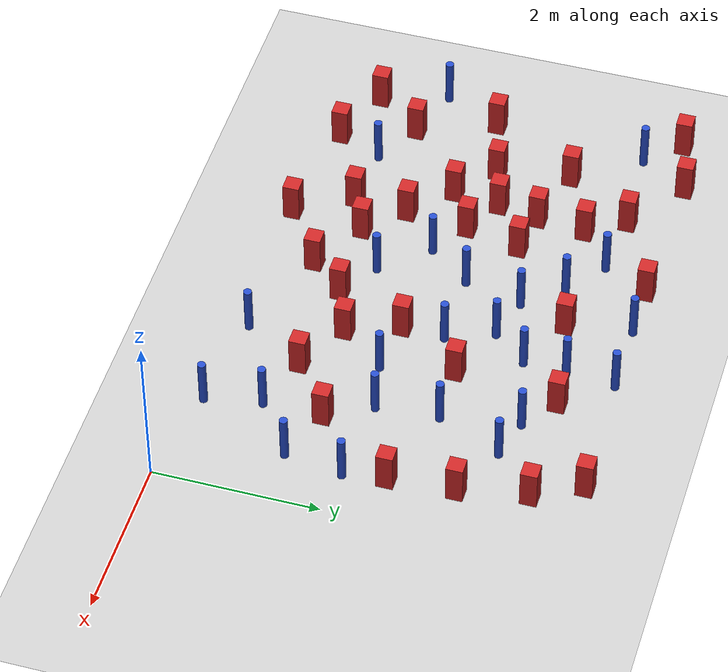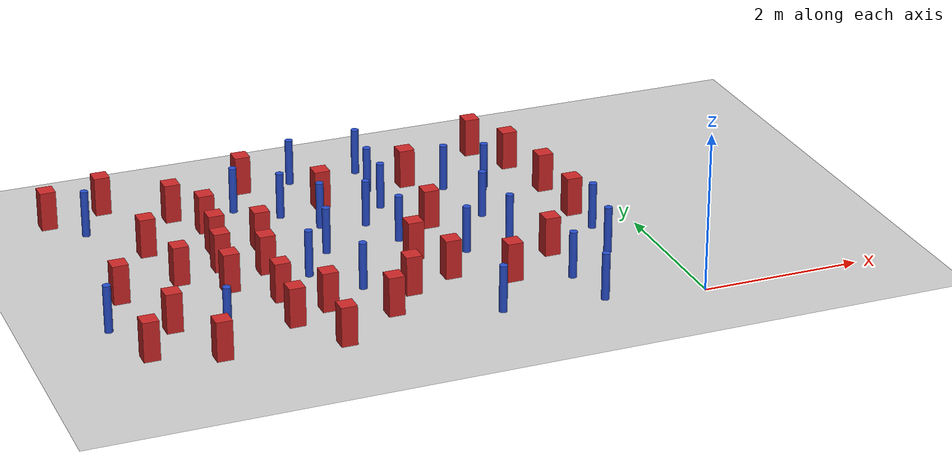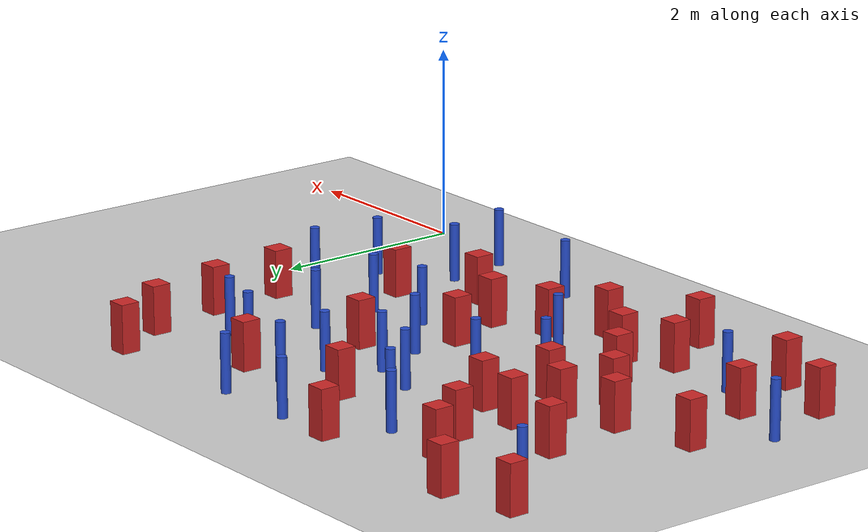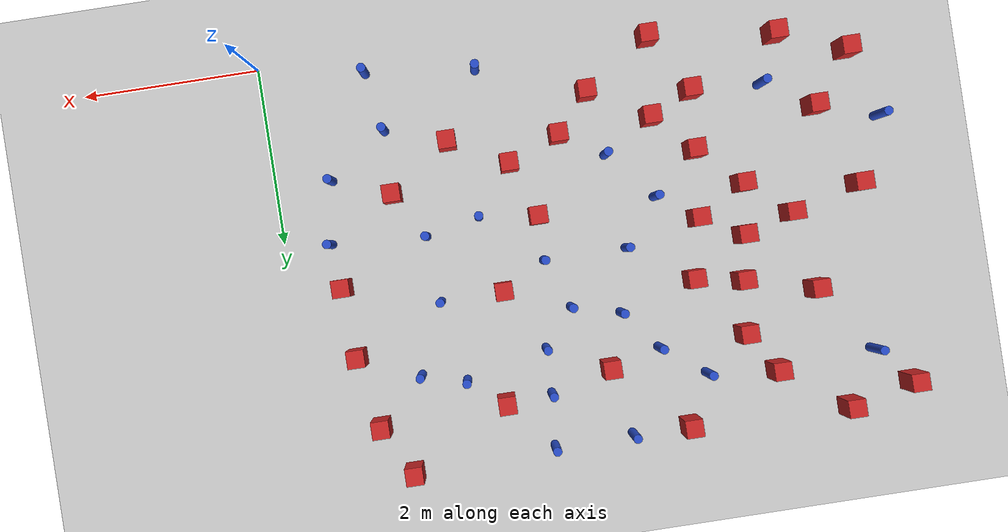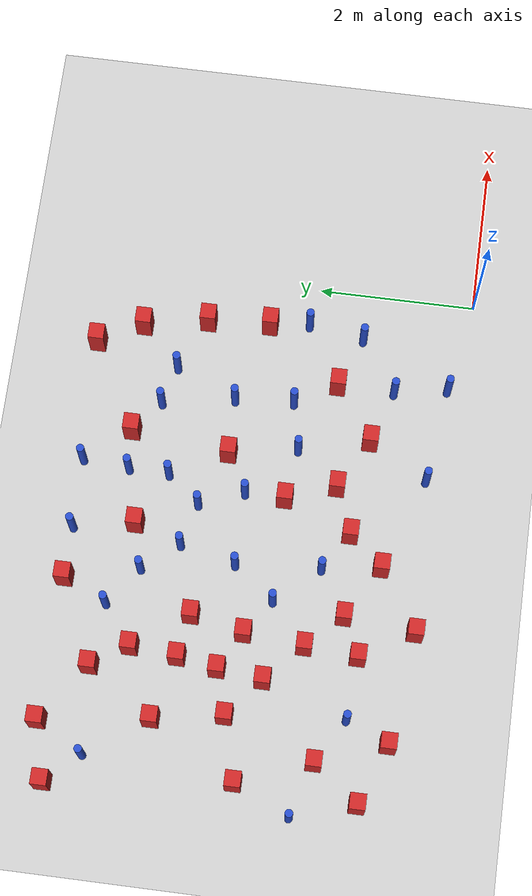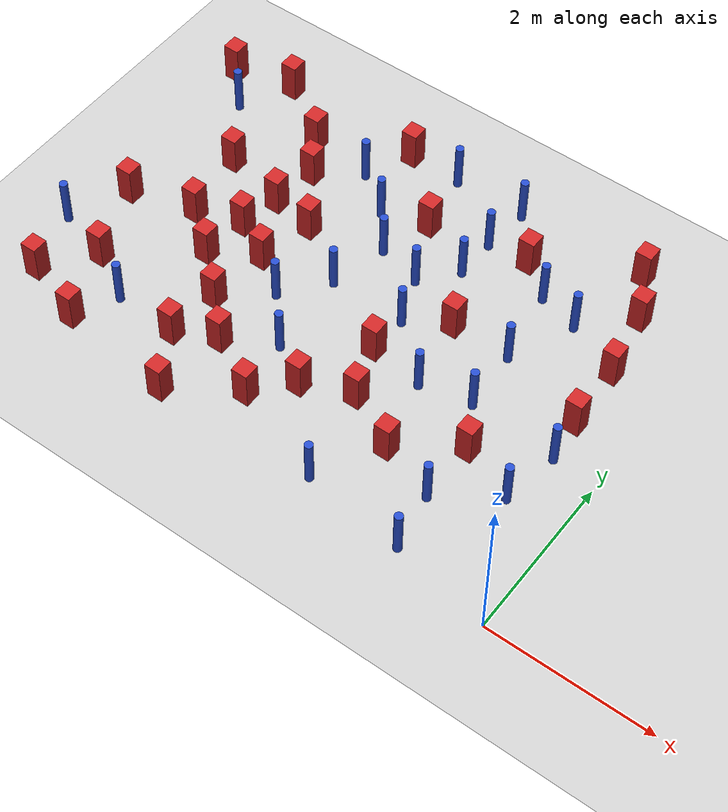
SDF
<sdf version="1.6">
 <world name="default">
  <model name="ground_plane">
   <static>1</static>
   <link name="link">
    <collision name="collision">
     <geometry><plane><normal>0 0 1</normal><size>100 100</size></plane></geometry>
     <surface><friction><ode><mu>100</mu><mu2>50</mu2></ode></friction></surface>
    </collision>
    <visual name="visual">
     <cast_shadows>0</cast_shadows>
     <geometry><plane><normal>0 0 1</normal><size>100 100</size></plane></geometry>
     <material>
      <ambient>1.0 1.0 1.0 1.0</ambient>
      <diffuse>0.8 0.8 0.8 1.0</diffuse>
      <specular>0.01 0.01 0.01 1.000000</specular>
     </material>
    </visual>
   </link>
  </model>
  <model name="square_post_obstacle3">
   <static>true</static>
   <pose>-5.07820106895 3.18135762716 -6.11067671241e-07 -5.50515727128e-06 -8.79689657224e-07 2.37013304536e-05</pose>
   <link name="link">
    <pose>0 0 0.25 0 -0 0</pose>
    <inertial>
     <mass>100</mass>
     <inertia>
      <ixx>0.166667</ixx>
      <ixy>0</ixy>
      <ixz>0</ixz>
      <iyy>0.166667</iyy>
      <iyz>0</iyz>
      <izz>0.166667</izz>
     </inertia>
    </inertial>
    <collision name="collision"><geometry><box><size>.2 .2 .5</size></box></geometry></collision>
    <visual name="visual">
     <geometry><box><size>.2 .2 .5</size></box></geometry>
     <material>
      <script><name>Gazebo/Red</name><uri>file://media/materials/scripts/gazebo.material</uri></script>
     </material>
    </visual>
   </link>
  </model>
  <model name="pole_obstacle3">
   <static>true</static>
   <pose>-5.60462151577 1.01709262523 -9.47619616065e-06 5.49618799737e-07 2.36310414071e-07 -1.55090534795e-07</pose>
   <link name="link">
    <pose>0 0 0.3 0 -0 0</pose>
    <inertial>
     <mass>1</mass>
     <inertia><ixx>0.145833</ixx><ixy>0</ixy><ixz>0</ixz><iyy>0.145833</iyy><iyz>0</iyz><izz>0.125</izz></inertia>
    </inertial>
    <collision name="collision">
     <geometry><cylinder><radius>0.05</radius><length>.6</length></cylinder></geometry>
    </collision>
    <visual name="visual">
     <geometry><cylinder><radius>0.05</radius><length>.6</length></cylinder></geometry>
     <material>
      <script><name>Gazebo/Blue</name><uri>file://media/materials/scripts/gazebo.material</uri></script>
     </material>
    </visual>
   </link>
  </model>
  <model name="square_post_obstacle6">
   <static>true</static>
   <pose>-2.23909041218 4.15770622929 -6.11067671241e-07 -5.50515727128e-06 -8.79689657224e-07 2.37013304536e-05</pose>
   <link name="link">
    <pose>0 0 0.25 0 -0 0</pose>
    <inertial>
     <mass>100</mass>
     <inertia>
      <ixx>0.166667</ixx>
      <ixy>0</ixy>
      <ixz>0</ixz>
      <iyy>0.166667</iyy>
      <iyz>0</iyz>
      <izz>0.166667</izz>
     </inertia>
    </inertial>
    <collision name="collision"><geometry><box><size>.2 .2 .5</size></box></geometry></collision>
    <visual name="visual">
     <geometry><box><size>.2 .2 .5</size></box></geometry>
     <material>
      <script><name>Gazebo/Red</name><uri>file://media/materials/scripts/gazebo.material</uri></script>
     </material>
    </visual>
   </link>
  </model>
  <model name="pole_obstacle5">
   <static>true</static>
   <pose>-4.5283102486 4.16066670796 -9.47619616065e-06 5.49618799737e-07 2.36310414037e-07 -1.55090534814e-07</pose>
   <link name="link">
    <pose>0 0 0.3 0 -0 0</pose>
    <inertial>
     <mass>1</mass>
     <inertia><ixx>0.145833</ixx><ixy>0</ixy><ixz>0</ixz><iyy>0.145833</iyy><iyz>0</iyz><izz>0.125</izz></inertia>
    </inertial>
    <collision name="collision">
     <geometry><cylinder><radius>0.05</radius><length>.6</length></cylinder></geometry>
    </collision>
    <visual name="visual">
     <geometry><cylinder><radius>0.05</radius><length>.6</length></cylinder></geometry>
     <material>
      <script><name>Gazebo/Blue</name><uri>file://media/materials/scripts/gazebo.material</uri></script>
     </material>
    </visual>
   </link>
  </model>
  <model name="pole_obstacle10">
   <static>true</static>
   <pose>-1.33288930093 3.70282514603 -9.47619616065e-06 5.49618799737e-07 2.36310414062e-07 -1.55090534798e-07</pose>
   <link name="link">
    <pose>0 0 0.3 0 -0 0</pose>
    <inertial>
     <mass>1</mass>
     <inertia><ixx>0.145833</ixx><ixy>0</ixy><ixz>0</ixz><iyy>0.145833</iyy><iyz>0</iyz><izz>0.125</izz></inertia>
    </inertial>
    <collision name="collision">
     <geometry><cylinder><radius>0.05</radius><length>.6</length></cylinder></geometry>
    </collision>
    <visual name="visual">
     <geometry><cylinder><radius>0.05</radius><length>.6</length></cylinder></geometry>
     <material>
      <script><name>Gazebo/Blue</name><uri>file://media/materials/scripts/gazebo.material</uri></script>
     </material>
    </visual>
   </link>
  </model>
  <model name="square_post_obstacle20">
   <static>true</static>
   <pose>-6.16429264056 1.35140668349 -6.11067671241e-07 -5.50515727128e-06 -8.79689657224e-07 2.37013304536e-05</pose>
   <link name="link">
    <pose>0 0 0.25 0 -0 0</pose>
    <inertial>
     <mass>100</mass>
     <inertia>
      <ixx>0.166667</ixx>
      <ixy>0</ixy>
      <ixz>0</ixz>
      <iyy>0.166667</iyy>
      <iyz>0</iyz>
      <izz>0.166667</izz>
     </inertia>
    </inertial>
    <collision name="collision"><geometry><box><size>.2 .2 .5</size></box></geometry></collision>
    <visual name="visual">
     <geometry><box><size>.2 .2 .5</size></box></geometry>
     <material>
      <script><name>Gazebo/Red</name><uri>file://media/materials/scripts/gazebo.material</uri></script>
     </material>
    </visual>
   </link>
  </model>
  <model name="square_post_obstacle27">
   <static>true</static>
   <pose>-6.53108034464 2.28817975362 -6.11067671241e-07 -5.50515727128e-06 -8.79689657224e-07 2.37013304536e-05</pose>
   <link name="link">
    <pose>0 0 0.25 0 -0 0</pose>
    <inertial>
     <mass>100</mass>
     <inertia>
      <ixx>0.166667</ixx>
      <ixy>0</ixy>
      <ixz>0</ixz>
      <iyy>0.166667</iyy>
      <iyz>0</iyz>
      <izz>0.166667</izz>
     </inertia>
    </inertial>
    <collision name="collision"><geometry><box><size>.2 .2 .5</size></box></geometry></collision>
    <visual name="visual">
     <geometry><box><size>.2 .2 .5</size></box></geometry>
     <material>
      <script><name>Gazebo/Red</name><uri>file://media/materials/scripts/gazebo.material</uri></script>
     </material>
    </visual>
   </link>
  </model>
  <model name="pole_obstacle18">
   <static>true</static>
   <pose>-3.83549714506 2.62508150924 -9.47619616065e-06 5.49618799737e-07 2.36310414051e-07 -1.55090534807e-07</pose>
   <link name="link">
    <pose>0 0 0.3 0 -0 0</pose>
    <inertial>
     <mass>1</mass>
     <inertia><ixx>0.145833</ixx><ixy>0</ixy><ixz>0</ixz><iyy>0.145833</iyy><iyz>0</iyz><izz>0.125</izz></inertia>
    </inertial>
    <collision name="collision">
     <geometry><cylinder><radius>0.05</radius><length>.6</length></cylinder></geometry>
    </collision>
    <visual name="visual">
     <geometry><cylinder><radius>0.05</radius><length>.6</length></cylinder></geometry>
     <material>
      <script><name>Gazebo/Blue</name><uri>file://media/materials/scripts/gazebo.material</uri></script>
     </material>
    </visual>
   </link>
  </model>
  <model name="square_post_obstacle37">
   <static>true</static>
   <pose>-0.802908724968 4.2097109059 -6.11067671241e-07 -5.50515727128e-06 -8.79689657224e-07 2.37013304536e-05</pose>
   <link name="link">
    <pose>0 0 0.25 0 -0 0</pose>
    <inertial>
     <mass>100</mass>
     <inertia>
      <ixx>0.166667</ixx>
      <ixy>0</ixy>
      <ixz>0</ixz>
      <iyy>0.166667</iyy>
      <iyz>0</iyz>
      <izz>0.166667</izz>
     </inertia>
    </inertial>
    <collision name="collision"><geometry><box><size>.2 .2 .5</size></box></geometry></collision>
    <visual name="visual">
     <geometry><box><size>.2 .2 .5</size></box></geometry>
     <material>
      <script><name>Gazebo/Red</name><uri>file://media/materials/scripts/gazebo.material</uri></script>
     </material>
    </visual>
   </link>
  </model>
  <model name="square_post_obstacle43">
   <static>true</static>
   <pose>-2.89939615768 2.11506736658 -6.11067671241e-07 -5.50515727128e-06 -8.79689657224e-07 2.37013304536e-05</pose>
   <link name="link">
    <pose>0 0 0.25 0 -0 0</pose>
    <inertial>
     <mass>100</mass>
     <inertia>
      <ixx>0.166667</ixx>
      <ixy>0</ixy>
      <ixz>0</ixz>
      <iyy>0.166667</iyy>
      <iyz>0</iyz>
      <izz>0.166667</izz>
     </inertia>
    </inertial>
    <collision name="collision"><geometry><box><size>.2 .2 .5</size></box></geometry></collision>
    <visual name="visual">
     <geometry><box><size>.2 .2 .5</size></box></geometry>
     <material>
      <script><name>Gazebo/Red</name><uri>file://media/materials/scripts/gazebo.material</uri></script>
     </material>
    </visual>
   </link>
  </model>
  <model name="square_post_obstacle45">
   <static>true</static>
   <pose>-5.01952745736 3.77897879396 -6.11067671241e-07 -5.50515727128e-06 -8.79689657224e-07 2.37013304536e-05</pose>
   <link name="link">
    <pose>0 0 0.25 0 -0 0</pose>
    <inertial>
     <mass>100</mass>
     <inertia>
      <ixx>0.166667</ixx>
      <ixy>0</ixy>
      <ixz>0</ixz>
      <iyy>0.166667</iyy>
      <iyz>0</iyz>
      <izz>0.166667</izz>
     </inertia>
    </inertial>
    <collision name="collision"><geometry><box><size>.2 .2 .5</size></box></geometry></collision>
    <visual name="visual">
     <geometry><box><size>.2 .2 .5</size></box></geometry>
     <material>
      <script><name>Gazebo/Red</name><uri>file://media/materials/scripts/gazebo.material</uri></script>
     </material>
    </visual>
   </link>
  </model>
  <model name="square_post_obstacle51">
   <static>true</static>
   <pose>-6.80410162851 4.59007453778 -6.11067671241e-07 -5.50515727128e-06 -8.79689657224e-07 2.37013304536e-05</pose>
   <link name="link">
    <pose>0 0 0.25 0 -0 0</pose>
    <inertial>
     <mass>100</mass>
     <inertia>
      <ixx>0.166667</ixx>
      <ixy>0</ixy>
      <ixz>0</ixz>
      <iyy>0.166667</iyy>
      <iyz>0</iyz>
      <izz>0.166667</izz>
     </inertia>
    </inertial>
    <collision name="collision"><geometry><box><size>.2 .2 .5</size></box></geometry></collision>
    <visual name="visual">
     <geometry><box><size>.2 .2 .5</size></box></geometry>
     <material>
      <script><name>Gazebo/Red</name><uri>file://media/materials/scripts/gazebo.material</uri></script>
     </material>
    </visual>
   </link>
  </model>
  <model name="pole_obstacle58">
   <static>true</static>
   <pose>-1.32485566996 0.902555476372 -9.47619616065e-06 5.49618799737e-07 2.36310414065e-07 -1.55090534798e-07</pose>
   <link name="link">
    <pose>0 0 0.3 0 -0 0</pose>
    <inertial>
     <mass>1</mass>
     <inertia><ixx>0.145833</ixx><ixy>0</ixy><ixz>0</ixz><iyy>0.145833</iyy><iyz>0</iyz><izz>0.125</izz></inertia>
    </inertial>
    <collision name="collision">
     <geometry><cylinder><radius>0.05</radius><length>.6</length></cylinder></geometry>
    </collision>
    <visual name="visual">
     <geometry><cylinder><radius>0.05</radius><length>.6</length></cylinder></geometry>
     <material>
      <script><name>Gazebo/Blue</name><uri>file://media/materials/scripts/gazebo.material</uri></script>
     </material>
    </visual>
   </link>
  </model>
  <model name="pole_obstacle63">
   <static>true</static>
   <pose>-2.23923769816 2.02863514059 -9.47619616065e-06 5.49618799737e-07 2.36310414066e-07 -1.55090534797e-07</pose>
   <link name="link">
    <pose>0 0 0.3 0 -0 0</pose>
    <inertial>
     <mass>1</mass>
     <inertia><ixx>0.145833</ixx><ixy>0</ixy><ixz>0</ixz><iyy>0.145833</iyy><iyz>0</iyz><izz>0.125</izz></inertia>
    </inertial>
    <collision name="collision">
     <geometry><cylinder><radius>0.05</radius><length>.6</length></cylinder></geometry>
    </collision>
    <visual name="visual">
     <geometry><cylinder><radius>0.05</radius><length>.6</length></cylinder></geometry>
     <material>
      <script><name>Gazebo/Blue</name><uri>file://media/materials/scripts/gazebo.material</uri></script>
     </material>
    </visual>
   </link>
  </model>
  <model name="square_post_obstacle67">
   <static>true</static>
   <pose>-4.40875693709 0.299659888115 -6.11067671241e-07 -5.50515727128e-06 -8.79689657224e-07 2.37013304536e-05</pose>
   <link name="link">
    <pose>0 0 0.25 0 -0 0</pose>
    <inertial>
     <mass>100</mass>
     <inertia>
      <ixx>0.166667</ixx>
      <ixy>0</ixy>
      <ixz>0</ixz>
      <iyy>0.166667</iyy>
      <iyz>0</iyz>
      <izz>0.166667</izz>
     </inertia>
    </inertial>
    <collision name="collision"><geometry><box><size>.2 .2 .5</size></box></geometry></collision>
    <visual name="visual">
     <geometry><box><size>.2 .2 .5</size></box></geometry>
     <material>
      <script><name>Gazebo/Red</name><uri>file://media/materials/scripts/gazebo.material</uri></script>
     </material>
    </visual>
   </link>
  </model>
  <model name="pole_obstacle66">
   <static>true</static>
   <pose>-2.75958868724 4.12726571865 -9.47619616065e-06 5.49618799738e-07 2.3631041406e-07 -1.55090534801e-07</pose>
   <link name="link">
    <pose>0 0 0.3 0 -0 0</pose>
    <inertial>
     <mass>1</mass>
     <inertia><ixx>0.145833</ixx><ixy>0</ixy><ixz>0</ixz><iyy>0.145833</iyy><iyz>0</iyz><izz>0.125</izz></inertia>
    </inertial>
    <collision name="collision">
     <geometry><cylinder><radius>0.05</radius><length>.6</length></cylinder></geometry>
    </collision>
    <visual name="visual">
     <geometry><cylinder><radius>0.05</radius><length>.6</length></cylinder></geometry>
     <material>
      <script><name>Gazebo/Blue</name><uri>file://media/materials/scripts/gazebo.material</uri></script>
     </material>
    </visual>
   </link>
  </model>
  <model name="square_post_obstacle71">
   <static>true</static>
   <pose>-2.0110638468 1.13192421709 -6.11067671241e-07 -5.50515727128e-06 -8.79689657224e-07 2.37013304536e-05</pose>
   <link name="link">
    <pose>0 0 0.25 0 -0 0</pose>
    <inertial>
     <mass>100</mass>
     <inertia>
      <ixx>0.166667</ixx>
      <ixy>0</ixy>
      <ixz>0</ixz>
      <iyy>0.166667</iyy>
      <iyz>0</iyz>
      <izz>0.166667</izz>
     </inertia>
    </inertial>
    <collision name="collision"><geometry><box><size>.2 .2 .5</size></box></geometry></collision>
    <visual name="visual">
     <geometry><box><size>.2 .2 .5</size></box></geometry>
     <material>
      <script><name>Gazebo/Red</name><uri>file://media/materials/scripts/gazebo.material</uri></script>
     </material>
    </visual>
   </link>
  </model>
  <model name="pole_obstacle75">
   <static>true</static>
   <pose>-2.70594052916 4.72348303575 -9.47619616065e-06 5.49618799738e-07 2.3631041406e-07 -1.55090534801e-07</pose>
   <link name="link">
    <pose>0 0 0.3 0 -0 0</pose>
    <inertial>
     <mass>1</mass>
     <inertia><ixx>0.145833</ixx><ixy>0</ixy><ixz>0</ixz><iyy>0.145833</iyy><iyz>0</iyz><izz>0.125</izz></inertia>
    </inertial>
    <collision name="collision">
     <geometry><cylinder><radius>0.05</radius><length>.6</length></cylinder></geometry>
    </collision>
    <visual name="visual">
     <geometry><cylinder><radius>0.05</radius><length>.6</length></cylinder></geometry>
     <material>
      <script><name>Gazebo/Blue</name><uri>file://media/materials/scripts/gazebo.material</uri></script>
     </material>
    </visual>
   </link>
  </model>
  <model name="pole_obstacle77">
   <static>true</static>
   <pose>-1.20469363979 0.223138556324 -9.47619616065e-06 5.49618799737e-07 2.36310414063e-07 -1.55090534798e-07</pose>
   <link name="link">
    <pose>0 0 0.3 0 -0 0</pose>
    <inertial>
     <mass>1</mass>
     <inertia><ixx>0.145833</ixx><ixy>0</ixy><ixz>0</ixz><iyy>0.145833</iyy><iyz>0</iyz><izz>0.125</izz></inertia>
    </inertial>
    <collision name="collision">
     <geometry><cylinder><radius>0.05</radius><length>.6</length></cylinder></geometry>
    </collision>
    <visual name="visual">
     <geometry><cylinder><radius>0.05</radius><length>.6</length></cylinder></geometry>
     <material>
      <script><name>Gazebo/Blue</name><uri>file://media/materials/scripts/gazebo.material</uri></script>
     </material>
    </visual>
   </link>
  </model>
  <model name="square_post_obstacle82">
   <static>true</static>
   <pose>-6.06641784569 4.76943486509 -6.11067671241e-07 -5.50515727128e-06 -8.79689657224e-07 2.37013304536e-05</pose>
   <link name="link">
    <pose>0 0 0.25 0 -0 0</pose>
    <inertial>
     <mass>100</mass>
     <inertia>
      <ixx>0.166667</ixx>
      <ixy>0</ixy>
      <ixz>0</ixz>
      <iyy>0.166667</iyy>
      <iyz>0</iyz>
      <izz>0.166667</izz>
     </inertia>
    </inertial>
    <collision name="collision"><geometry><box><size>.2 .2 .5</size></box></geometry></collision>
    <visual name="visual">
     <geometry><box><size>.2 .2 .5</size></box></geometry>
     <material>
      <script><name>Gazebo/Red</name><uri>file://media/materials/scripts/gazebo.material</uri></script>
     </material>
    </visual>
   </link>
  </model>
  <model name="square_post_obstacle87">
   <static>true</static>
   <pose>-2.66383230112 1.4797559603 -6.11067671241e-07 -5.50515727128e-06 -8.79689657224e-07 2.37013304536e-05</pose>
   <link name="link">
    <pose>0 0 0.25 0 -0 0</pose>
    <inertial>
     <mass>100</mass>
     <inertia>
      <ixx>0.166667</ixx>
      <ixy>0</ixy>
      <ixz>0</ixz>
      <iyy>0.166667</iyy>
      <iyz>0</iyz>
      <izz>0.166667</izz>
     </inertia>
    </inertial>
    <collision name="collision"><geometry><box><size>.2 .2 .5</size></box></geometry></collision>
    <visual name="visual">
     <geometry><box><size>.2 .2 .5</size></box></geometry>
     <material>
      <script><name>Gazebo/Red</name><uri>file://media/materials/scripts/gazebo.material</uri></script>
     </material>
    </visual>
   </link>
  </model>
  <model name="square_post_obstacle91">
   <static>true</static>
   <pose>-4.75184030152 1.64069558663 -6.11067671241e-07 -5.50515727128e-06 -8.79689657224e-07 2.37013304536e-05</pose>
   <link name="link">
    <pose>0 0 0.25 0 -0 0</pose>
    <inertial>
     <mass>100</mass>
     <inertia>
      <ixx>0.166667</ixx>
      <ixy>0</ixy>
      <ixz>0</ixz>
      <iyy>0.166667</iyy>
      <iyz>0</iyz>
      <izz>0.166667</izz>
     </inertia>
    </inertial>
    <collision name="collision"><geometry><box><size>.2 .2 .5</size></box></geometry></collision>
    <visual name="visual">
     <geometry><box><size>.2 .2 .5</size></box></geometry>
     <material>
      <script><name>Gazebo/Red</name><uri>file://media/materials/scripts/gazebo.material</uri></script>
     </material>
    </visual>
   </link>
  </model>
  <model name="square_post_obstacle94">
   <static>true</static>
   <pose>-2.391275293 2.8991890919 -6.11067671241e-07 -5.50515727128e-06 -8.79689657224e-07 2.37013304536e-05</pose>
   <link name="link">
    <pose>0 0 0.25 0 -0 0</pose>
    <inertial>
     <mass>100</mass>
     <inertia>
      <ixx>0.166667</ixx>
      <ixy>0</ixy>
      <ixz>0</ixz>
      <iyy>0.166667</iyy>
      <iyz>0</iyz>
      <izz>0.166667</izz>
     </inertia>
    </inertial>
    <collision name="collision"><geometry><box><size>.2 .2 .5</size></box></geometry></collision>
    <visual name="visual">
     <geometry><box><size>.2 .2 .5</size></box></geometry>
     <material>
      <script><name>Gazebo/Red</name><uri>file://media/materials/scripts/gazebo.material</uri></script>
     </material>
    </visual>
   </link>
  </model>
  <model name="pole_obstacle107">
   <static>true</static>
   <pose>-6.427812715 4.16836482975 -9.47619616065e-06 5.49618799737e-07 2.36310414037e-07 -1.55090534814e-07</pose>
   <link name="link">
    <pose>0 0 0.3 0 -0 0</pose>
    <inertial>
     <mass>1</mass>
     <inertia><ixx>0.145833</ixx><ixy>0</ixy><ixz>0</ixz><iyy>0.145833</iyy><iyz>0</iyz><izz>0.125</izz></inertia>
    </inertial>
    <collision name="collision">
     <geometry><cylinder><radius>0.05</radius><length>.6</length></cylinder></geometry>
    </collision>
    <visual name="visual">
     <geometry><cylinder><radius>0.05</radius><length>.6</length></cylinder></geometry>
     <material>
      <script><name>Gazebo/Blue</name><uri>file://media/materials/scripts/gazebo.material</uri></script>
     </material>
    </visual>
   </link>
  </model>
  <model name="square_post_obstacle97">
   <static>true</static>
   <pose>-6.60961550633 0.770505626093 -6.11067671241e-07 -5.50515727128e-06 -8.79689657224e-07 2.37013304536e-05</pose>
   <link name="link">
    <pose>0 0 0.25 0 -0 0</pose>
    <inertial>
     <mass>100</mass>
     <inertia>
      <ixx>0.166667</ixx>
      <ixy>0</ixy>
      <ixz>0</ixz>
      <iyy>0.166667</iyy>
      <iyz>0</iyz>
      <izz>0.166667</izz>
     </inertia>
    </inertial>
    <collision name="collision"><geometry><box><size>.2 .2 .5</size></box></geometry></collision>
    <visual name="visual">
     <geometry><box><size>.2 .2 .5</size></box></geometry>
     <material>
      <script><name>Gazebo/Red</name><uri>file://media/materials/scripts/gazebo.material</uri></script>
     </material>
    </visual>
   </link>
  </model>
  <model name="square_post_obstacle101">
   <static>true</static>
   <pose>-3.45346684615 3.93948492483 -6.11067671241e-07 -5.50515727128e-06 -8.79689657224e-07 2.37013304536e-05</pose>
   <link name="link">
    <pose>0 0 0.25 0 -0 0</pose>
    <inertial>
     <mass>100</mass>
     <inertia>
      <ixx>0.166667</ixx>
      <ixy>0</ixy>
      <ixz>0</ixz>
      <iyy>0.166667</iyy>
      <iyz>0</iyz>
      <izz>0.166667</izz>
     </inertia>
    </inertial>
    <collision name="collision"><geometry><box><size>.2 .2 .5</size></box></geometry></collision>
    <visual name="visual">
     <geometry><box><size>.2 .2 .5</size></box></geometry>
     <material>
      <script><name>Gazebo/Red</name><uri>file://media/materials/scripts/gazebo.material</uri></script>
     </material>
    </visual>
   </link>
  </model>
  <model name="pole_obstacle114">
   <static>true</static>
   <pose>-6.86817846384 1.56852439253 -9.47619616065e-06 5.49618799738e-07 2.36310414071e-07 -1.55090534796e-07</pose>
   <link name="link">
    <pose>0 0 0.3 0 -0 0</pose>
    <inertial>
     <mass>1</mass>
     <inertia><ixx>0.145833</ixx><ixy>0</ixy><ixz>0</ixz><iyy>0.145833</iyy><iyz>0</iyz><izz>0.125</izz></inertia>
    </inertial>
    <collision name="collision">
     <geometry><cylinder><radius>0.05</radius><length>.6</length></cylinder></geometry>
    </collision>
    <visual name="visual">
     <geometry><cylinder><radius>0.05</radius><length>.6</length></cylinder></geometry>
     <material>
      <script><name>Gazebo/Blue</name><uri>file://media/materials/scripts/gazebo.material</uri></script>
     </material>
    </visual>
   </link>
  </model>
  <model name="pole_obstacle117">
   <static>true</static>
   <pose>-2.44580604331 0.37077305259 -9.47619616065e-06 5.49618799738e-07 2.36310414074e-07 -1.55090534794e-07</pose>
   <link name="link">
    <pose>0 0 0.3 0 -0 0</pose>
    <inertial>
     <mass>1</mass>
     <inertia><ixx>0.145833</ixx><ixy>0</ixy><ixz>0</ixz><iyy>0.145833</iyy><iyz>0</iyz><izz>0.125</izz></inertia>
    </inertial>
    <collision name="collision">
     <geometry><cylinder><radius>0.05</radius><length>.6</length></cylinder></geometry>
    </collision>
    <visual name="visual">
     <geometry><cylinder><radius>0.05</radius><length>.6</length></cylinder></geometry>
     <material>
      <script><name>Gazebo/Blue</name><uri>file://media/materials/scripts/gazebo.material</uri></script>
     </material>
    </visual>
   </link>
  </model>
  <model name="square_post_obstacle108">
   <static>true</static>
   <pose>-5.23612412321 2.09697891814 -6.11067671241e-07 -5.50515727128e-06 -8.79689657224e-07 2.37013304536e-05</pose>
   <link name="link">
    <pose>0 0 0.25 0 -0 0</pose>
    <inertial>
     <mass>100</mass>
     <inertia>
      <ixx>0.166667</ixx>
      <ixy>0</ixy>
      <ixz>0</ixz>
      <iyy>0.166667</iyy>
      <iyz>0</iyz>
      <izz>0.166667</izz>
     </inertia>
    </inertial>
    <collision name="collision"><geometry><box><size>.2 .2 .5</size></box></geometry></collision>
    <visual name="visual">
     <geometry><box><size>.2 .2 .5</size></box></geometry>
     <material>
      <script><name>Gazebo/Red</name><uri>file://media/materials/scripts/gazebo.material</uri></script>
     </material>
    </visual>
   </link>
  </model>
  <model name="pole_obstacle122">
   <static>true</static>
   <pose>-3.75545069726 1.54632791253 -9.47619616065e-06 5.49618799737e-07 2.36310414072e-07 -1.55090534793e-07</pose>
   <link name="link">
    <pose>0 0 0.3 0 -0 0</pose>
    <inertial>
     <mass>1</mass>
     <inertia><ixx>0.145833</ixx><ixy>0</ixy><ixz>0</ixz><iyy>0.145833</iyy><iyz>0</iyz><izz>0.125</izz></inertia>
    </inertial>
    <collision name="collision">
     <geometry><cylinder><radius>0.05</radius><length>.6</length></cylinder></geometry>
    </collision>
    <visual name="visual">
     <geometry><cylinder><radius>0.05</radius><length>.6</length></cylinder></geometry>
     <material>
      <script><name>Gazebo/Blue</name><uri>file://media/materials/scripts/gazebo.material</uri></script>
     </material>
    </visual>
   </link>
  </model>
  <model name="pole_obstacle129">
   <static>true</static>
   <pose>-2.89470403161 2.62397988873 -9.47619616065e-06 5.49618799737e-07 2.36310414051e-07 -1.55090534807e-07</pose>
   <link name="link">
    <pose>0 0 0.3 0 -0 0</pose>
    <inertial>
     <mass>1</mass>
     <inertia><ixx>0.145833</ixx><ixy>0</ixy><ixz>0</ixz><iyy>0.145833</iyy><iyz>0</iyz><izz>0.125</izz></inertia>
    </inertial>
    <collision name="collision">
     <geometry><cylinder><radius>0.05</radius><length>.6</length></cylinder></geometry>
    </collision>
    <visual name="visual">
     <geometry><cylinder><radius>0.05</radius><length>.6</length></cylinder></geometry>
     <material>
      <script><name>Gazebo/Blue</name><uri>file://media/materials/scripts/gazebo.material</uri></script>
     </material>
    </visual>
   </link>
  </model>
  <model name="pole_obstacle135">
   <static>true</static>
   <pose>-0.540872353295 2.08657459499 -9.47619616065e-06 5.49618799737e-07 2.36310414065e-07 -1.55090534797e-07</pose>
   <link name="link">
    <pose>0 0 0.3 0 -0 0</pose>
    <inertial>
     <mass>1</mass>
     <inertia><ixx>0.145833</ixx><ixy>0</ixy><ixz>0</ixz><iyy>0.145833</iyy><iyz>0</iyz><izz>0.125</izz></inertia>
    </inertial>
    <collision name="collision">
     <geometry><cylinder><radius>0.05</radius><length>.6</length></cylinder></geometry>
    </collision>
    <visual name="visual">
     <geometry><cylinder><radius>0.05</radius><length>.6</length></cylinder></geometry>
     <material>
      <script><name>Gazebo/Blue</name><uri>file://media/materials/scripts/gazebo.material</uri></script>
     </material>
    </visual>
   </link>
  </model>
  <model name="square_post_obstacle118">
   <static>true</static>
   <pose>-4.68230869816 2.40794719876 -6.11067671241e-07 -5.50515727128e-06 -8.79689657224e-07 2.37013304536e-05</pose>
   <link name="link">
    <pose>0 0 0.25 0 -0 0</pose>
    <inertial>
     <mass>100</mass>
     <inertia>
      <ixx>0.166667</ixx>
      <ixy>0</ixy>
      <ixz>0</ixz>
      <iyy>0.166667</iyy>
      <iyz>0</iyz>
      <izz>0.166667</izz>
     </inertia>
    </inertial>
    <collision name="collision"><geometry><box><size>.2 .2 .5</size></box></geometry></collision>
    <visual name="visual">
     <geometry><box><size>.2 .2 .5</size></box></geometry>
     <material>
      <script><name>Gazebo/Red</name><uri>file://media/materials/scripts/gazebo.material</uri></script>
     </material>
    </visual>
   </link>
  </model>
  <model name="square_post_obstacle144">
   <static>true</static>
   <pose>-5.31628200354 4.23925771756 -6.11067671241e-07 -5.50515727128e-06 -8.79689657224e-07 2.37013304536e-05</pose>
   <link name="link">
    <pose>0 0 0.25 0 -0 0</pose>
    <inertial>
     <mass>100</mass>
     <inertia>
      <ixx>0.166667</ixx>
      <ixy>0</ixy>
      <ixz>0</ixz>
      <iyy>0.166667</iyy>
      <iyz>0</iyz>
      <izz>0.166667</izz>
     </inertia>
    </inertial>
    <collision name="collision"><geometry><box><size>.2 .2 .5</size></box></geometry></collision>
    <visual name="visual">
     <geometry><box><size>.2 .2 .5</size></box></geometry>
     <material>
      <script><name>Gazebo/Red</name><uri>file://media/materials/scripts/gazebo.material</uri></script>
     </material>
    </visual>
   </link>
  </model>
  <model name="square_post_obstacle146">
   <static>true</static>
   <pose>-3.63951828456 0.807243349362 -6.11067671241e-07 -5.50515727128e-06 -8.79689657224e-07 2.37013304536e-05</pose>
   <link name="link">
    <pose>0 0 0.25 0 -0 0</pose>
    <inertial>
     <mass>100</mass>
     <inertia>
      <ixx>0.166667</ixx>
      <ixy>0</ixy>
      <ixz>0</ixz>
      <iyy>0.166667</iyy>
      <iyz>0</iyz>
      <izz>0.166667</izz>
     </inertia>
    </inertial>
    <collision name="collision"><geometry><box><size>.2 .2 .5</size></box></geometry></collision>
    <visual name="visual">
     <geometry><box><size>.2 .2 .5</size></box></geometry>
     <material>
      <script><name>Gazebo/Red</name><uri>file://media/materials/scripts/gazebo.material</uri></script>
     </material>
    </visual>
   </link>
  </model>
  <model name="square_post_obstacle149">
   <static>true</static>
   <pose>-0.600548239631 2.59413988048 -6.11067671241e-07 -5.50515727128e-06 -8.79689657224e-07 2.37013304536e-05</pose>
   <link name="link">
    <pose>0 0 0.25 0 -0 0</pose>
    <inertial>
     <mass>100</mass>
     <inertia>
      <ixx>0.166667</ixx>
      <ixy>0</ixy>
      <ixz>0</ixz>
      <iyy>0.166667</iyy>
      <iyz>0</iyz>
      <izz>0.166667</izz>
     </inertia>
    </inertial>
    <collision name="collision"><geometry><box><size>.2 .2 .5</size></box></geometry></collision>
    <visual name="visual">
     <geometry><box><size>.2 .2 .5</size></box></geometry>
     <material>
      <script><name>Gazebo/Red</name><uri>file://media/materials/scripts/gazebo.material</uri></script>
     </material>
    </visual>
   </link>
  </model>
  <model name="square_post_obstacle158">
   <static>true</static>
   <pose>-4.31582707805 1.19940171239 -6.11067671241e-07 -5.50515727128e-06 -8.79689657224e-07 2.37013304536e-05</pose>
   <link name="link">
    <pose>0 0 0.25 0 -0 0</pose>
    <inertial>
     <mass>100</mass>
     <inertia>
      <ixx>0.166667</ixx>
      <ixy>0</ixy>
      <ixz>0</ixz>
      <iyy>0.166667</iyy>
      <iyz>0</iyz>
      <izz>0.166667</izz>
     </inertia>
    </inertial>
    <collision name="collision"><geometry><box><size>.2 .2 .5</size></box></geometry></collision>
    <visual name="visual">
     <geometry><box><size>.2 .2 .5</size></box></geometry>
     <material>
      <script><name>Gazebo/Red</name><uri>file://media/materials/scripts/gazebo.material</uri></script>
     </material>
    </visual>
   </link>
  </model>
  <model name="square_post_obstacle159">
   <static>true</static>
   <pose>-1.09733700932 4.77476852234 -6.11067671241e-07 -5.50515727128e-06 -8.79689657224e-07 2.37013304536e-05</pose>
   <link name="link">
    <pose>0 0 0.25 0 -0 0</pose>
    <inertial>
     <mass>100</mass>
     <inertia>
      <ixx>0.166667</ixx>
      <ixy>0</ixy>
      <ixz>0</ixz>
      <iyy>0.166667</iyy>
      <iyz>0</iyz>
      <izz>0.166667</izz>
     </inertia>
    </inertial>
    <collision name="collision"><geometry><box><size>.2 .2 .5</size></box></geometry></collision>
    <visual name="visual">
     <geometry><box><size>.2 .2 .5</size></box></geometry>
     <material>
      <script><name>Gazebo/Red</name><uri>file://media/materials/scripts/gazebo.material</uri></script>
     </material>
    </visual>
   </link>
  </model>
  <model name="square_post_obstacle160">
   <static>true</static>
   <pose>-4.2497677252 4.71993095839 -6.11067671241e-07 -5.50515727128e-06 -8.79689657224e-07 2.37013304536e-05</pose>
   <link name="link">
    <pose>0 0 0.25 0 -0 0</pose>
    <inertial>
     <mass>100</mass>
     <inertia>
      <ixx>0.166667</ixx>
      <ixy>0</ixy>
      <ixz>0</ixz>
      <iyy>0.166667</iyy>
      <iyz>0</iyz>
      <izz>0.166667</izz>
     </inertia>
    </inertial>
    <collision name="collision"><geometry><box><size>.2 .2 .5</size></box></geometry></collision>
    <visual name="visual">
     <geometry><box><size>.2 .2 .5</size></box></geometry>
     <material>
      <script><name>Gazebo/Red</name><uri>file://media/materials/scripts/gazebo.material</uri></script>
     </material>
    </visual>
   </link>
  </model>
  <model name="pole_obstacle179">
   <static>true</static>
   <pose>-1.62068291627 2.1592646589 -9.47619616065e-06 5.49618799737e-07 2.36310414062e-07 -1.55090534798e-07</pose>
   <link name="link">
    <pose>0 0 0.3 0 -0 0</pose>
    <inertial>
     <mass>1</mass>
     <inertia><ixx>0.145833</ixx><ixy>0</ixy><ixz>0</ixz><iyy>0.145833</iyy><iyz>0</iyz><izz>0.125</izz></inertia>
    </inertial>
    <collision name="collision">
     <geometry><cylinder><radius>0.05</radius><length>.6</length></cylinder></geometry>
    </collision>
    <visual name="visual">
     <geometry><cylinder><radius>0.05</radius><length>.6</length></cylinder></geometry>
     <material>
      <script><name>Gazebo/Blue</name><uri>file://media/materials/scripts/gazebo.material</uri></script>
     </material>
    </visual>
   </link>
  </model>
  <model name="pole_obstacle182">
   <static>true</static>
   <pose>-3.66722514077 3.3388518111 -9.47619616065e-06 5.49618799737e-07 2.36310414051e-07 -1.55090534807e-07</pose>
   <link name="link">
    <pose>0 0 0.3 0 -0 0</pose>
    <inertial>
     <mass>1</mass>
     <inertia><ixx>0.145833</ixx><ixy>0</ixy><ixz>0</ixz><iyy>0.145833</iyy><iyz>0</iyz><izz>0.125</izz></inertia>
    </inertial>
    <collision name="collision">
     <geometry><cylinder><radius>0.05</radius><length>.6</length></cylinder></geometry>
    </collision>
    <visual name="visual">
     <geometry><cylinder><radius>0.05</radius><length>.6</length></cylinder></geometry>
     <material>
      <script><name>Gazebo/Blue</name><uri>file://media/materials/scripts/gazebo.material</uri></script>
     </material>
    </visual>
   </link>
  </model>
  <model name="pole_obstacle183">
   <static>true</static>
   <pose>-4.03429915615 3.79315934193 -9.47619616065e-06 5.49618799737e-07 2.36310414053e-07 -1.55090534804e-07</pose>
   <link name="link">
    <pose>0 0 0.3 0 -0 0</pose>
    <inertial>
     <mass>1</mass>
     <inertia><ixx>0.145833</ixx><ixy>0</ixy><ixz>0</ixz><iyy>0.145833</iyy><iyz>0</iyz><izz>0.125</izz></inertia>
    </inertial>
    <collision name="collision">
     <geometry><cylinder><radius>0.05</radius><length>.6</length></cylinder></geometry>
    </collision>
    <visual name="visual">
     <geometry><cylinder><radius>0.05</radius><length>.6</length></cylinder></geometry>
     <material>
      <script><name>Gazebo/Blue</name><uri>file://media/materials/scripts/gazebo.material</uri></script>
     </material>
    </visual>
   </link>
  </model>
  <model name="square_post_obstacle173">
   <static>true</static>
   <pose>-5.8813930461 3.39352698334 -6.11067671241e-07 -5.50515727128e-06 -8.79689657224e-07 2.37013304536e-05</pose>
   <link name="link">
    <pose>0 0 0.25 0 -0 0</pose>
    <inertial>
     <mass>100</mass>
     <inertia>
      <ixx>0.166667</ixx>
      <ixy>0</ixy>
      <ixz>0</ixz>
      <iyy>0.166667</iyy>
      <iyz>0</iyz>
      <izz>0.166667</izz>
     </inertia>
    </inertial>
    <collision name="collision"><geometry><box><size>.2 .2 .5</size></box></geometry></collision>
    <visual name="visual">
     <geometry><box><size>.2 .2 .5</size></box></geometry>
     <material>
      <script><name>Gazebo/Red</name><uri>file://media/materials/scripts/gazebo.material</uri></script>
     </material>
    </visual>
   </link>
  </model>
  <model name="square_post_obstacle175">
   <static>true</static>
   <pose>-4.53167882394 3.08427355586 -6.11067671241e-07 -5.50515727128e-06 -8.79689657224e-07 2.37013304536e-05</pose>
   <link name="link">
    <pose>0 0 0.25 0 -0 0</pose>
    <inertial>
     <mass>100</mass>
     <inertia>
      <ixx>0.166667</ixx>
      <ixy>0</ixy>
      <ixz>0</ixz>
      <iyy>0.166667</iyy>
      <iyz>0</iyz>
      <izz>0.166667</izz>
     </inertia>
    </inertial>
    <collision name="collision"><geometry><box><size>.2 .2 .5</size></box></geometry></collision>
    <visual name="visual">
     <geometry><box><size>.2 .2 .5</size></box></geometry>
     <material>
      <script><name>Gazebo/Red</name><uri>file://media/materials/scripts/gazebo.material</uri></script>
     </material>
    </visual>
   </link>
  </model>
  <model name="square_post_obstacle179">
   <static>true</static>
   <pose>-0.648618722198 3.39323700528 -6.11067671241e-07 -5.50515727128e-06 -8.79689657224e-07 2.37013304536e-05</pose>
   <link name="link">
    <pose>0 0 0.25 0 -0 0</pose>
    <inertial>
     <mass>100</mass>
     <inertia>
      <ixx>0.166667</ixx>
      <ixy>0</ixy>
      <ixz>0</ixz>
      <iyy>0.166667</iyy>
      <iyz>0</iyz>
      <izz>0.166667</izz>
     </inertia>
    </inertial>
    <collision name="collision"><geometry><box><size>.2 .2 .5</size></box></geometry></collision>
    <visual name="visual">
     <geometry><box><size>.2 .2 .5</size></box></geometry>
     <material>
      <script><name>Gazebo/Red</name><uri>file://media/materials/scripts/gazebo.material</uri></script>
     </material>
    </visual>
   </link>
  </model>
  <model name="square_post_obstacle180">
   <static>true</static>
   <pose>-1.31307753709 1.62702959783 -6.11067671241e-07 -5.50515727128e-06 -8.79689657224e-07 2.37013304536e-05</pose>
   <link name="link">
    <pose>0 0 0.25 0 -0 0</pose>
    <inertial>
     <mass>100</mass>
     <inertia>
      <ixx>0.166667</ixx>
      <ixy>0</ixy>
      <ixz>0</ixz>
      <iyy>0.166667</iyy>
      <iyz>0</iyz>
      <izz>0.166667</izz>
     </inertia>
    </inertial>
    <collision name="collision"><geometry><box><size>.2 .2 .5</size></box></geometry></collision>
    <visual name="visual">
     <geometry><box><size>.2 .2 .5</size></box></geometry>
     <material>
      <script><name>Gazebo/Red</name><uri>file://media/materials/scripts/gazebo.material</uri></script>
     </material>
    </visual>
   </link>
  </model>
  <model name="square_post_obstacle181">
   <static>true</static>
   <pose>-5.16784662511 2.67281597397 -6.11067671241e-07 -5.50515727128e-06 -8.79689657224e-07 2.37013304536e-05</pose>
   <link name="link">
    <pose>0 0 0.25 0 -0 0</pose>
    <inertial>
     <mass>100</mass>
     <inertia>
      <ixx>0.166667</ixx>
      <ixy>0</ixy>
      <ixz>0</ixz>
      <iyy>0.166667</iyy>
      <iyz>0</iyz>
      <izz>0.166667</izz>
     </inertia>
    </inertial>
    <collision name="collision"><geometry><box><size>.2 .2 .5</size></box></geometry></collision>
    <visual name="visual">
     <geometry><box><size>.2 .2 .5</size></box></geometry>
     <material>
      <script><name>Gazebo/Red</name><uri>file://media/materials/scripts/gazebo.material</uri></script>
     </material>
    </visual>
   </link>
  </model>
  <model name="square_post_obstacle182">
   <static>true</static>
   <pose>-5.83729853466 0.478324197888 -6.11067671241e-07 -5.50515727128e-06 -8.79689657224e-07 2.37013304536e-05</pose>
   <link name="link">
    <pose>0 0 0.25 0 -0 0</pose>
    <inertial>
     <mass>100</mass>
     <inertia>
      <ixx>0.166667</ixx>
      <ixy>0</ixy>
      <ixz>0</ixz>
      <iyy>0.166667</iyy>
      <iyz>0</iyz>
      <izz>0.166667</izz>
     </inertia>
    </inertial>
    <collision name="collision"><geometry><box><size>.2 .2 .5</size></box></geometry></collision>
    <visual name="visual">
     <geometry><box><size>.2 .2 .5</size></box></geometry>
     <material>
      <script><name>Gazebo/Red</name><uri>file://media/materials/scripts/gazebo.material</uri></script>
     </material>
    </visual>
   </link>
  </model>
  <model name="square_post_obstacle186">
   <static>true</static>
   <pose>-5.73317208104 2.50187345342 -6.11067671241e-07 -5.50515727128e-06 -8.79689657224e-07 2.37013304536e-05</pose>
   <link name="link">
    <pose>0 0 0.25 0 -0 0</pose>
    <inertial>
     <mass>100</mass>
     <inertia>
      <ixx>0.166667</ixx>
      <ixy>0</ixy>
      <ixz>0</ixz>
      <iyy>0.166667</iyy>
      <iyz>0</iyz>
      <izz>0.166667</izz>
     </inertia>
    </inertial>
    <collision name="collision"><geometry><box><size>.2 .2 .5</size></box></geometry></collision>
    <visual name="visual">
     <geometry><box><size>.2 .2 .5</size></box></geometry>
     <material>
      <script><name>Gazebo/Red</name><uri>file://media/materials/scripts/gazebo.material</uri></script>
     </material>
    </visual>
   </link>
  </model>
  <model name="square_post_obstacle198">
   <static>true</static>
   <pose>-4.80290428977 0.967675081975 -6.11067671241e-07 -5.50515727128e-06 -8.79689657224e-07 2.37013304536e-05</pose>
   <link name="link">
    <pose>0 0 0.25 0 -0 0</pose>
    <inertial>
     <mass>100</mass>
     <inertia>
      <ixx>0.166667</ixx>
      <ixy>0</ixy>
      <ixz>0</ixz>
      <iyy>0.166667</iyy>
      <iyz>0</iyz>
      <izz>0.166667</izz>
     </inertia>
    </inertial>
    <collision name="collision"><geometry><box><size>.2 .2 .5</size></box></geometry></collision>
    <visual name="visual">
     <geometry><box><size>.2 .2 .5</size></box></geometry>
     <material>
      <script><name>Gazebo/Red</name><uri>file://media/materials/scripts/gazebo.material</uri></script>
     </material>
    </visual>
   </link>
  </model>
  <model name="pole_obstacle191">
   <static>true</static>
   <pose>-3.11723407303 3.19222367014 -9.47619616065e-06 5.49618799737e-07 2.36310414067e-07 -1.55090534797e-07</pose>
   <link name="link">
    <pose>0 0 0.3 0 -0 0</pose>
    <inertial>
     <mass>1</mass>
     <inertia><ixx>0.145833</ixx><ixy>0</ixy><ixz>0</ixz><iyy>0.145833</iyy><iyz>0</iyz><izz>0.125</izz></inertia>
    </inertial>
    <collision name="collision">
     <geometry><cylinder><radius>0.05</radius><length>.6</length></cylinder></geometry>
    </collision>
    <visual name="visual">
     <geometry><cylinder><radius>0.05</radius><length>.6</length></cylinder></geometry>
     <material>
      <script><name>Gazebo/Blue</name><uri>file://media/materials/scripts/gazebo.material</uri></script>
     </material>
    </visual>
   </link>
  </model>
  <model name="pole_obstacle199">
   <static>true</static>
   <pose>-1.83328428074 3.838597183 -9.47619616065e-06 5.49618799737e-07 2.36310414062e-07 -1.55090534798e-07</pose>
   <link name="link">
    <pose>0 0 0.3 0 -0 0</pose>
    <inertial>
     <mass>1</mass>
     <inertia><ixx>0.145833</ixx><ixy>0</ixy><ixz>0</ixz><iyy>0.145833</iyy><iyz>0</iyz><izz>0.125</izz></inertia>
    </inertial>
    <collision name="collision">
     <geometry><cylinder><radius>0.05</radius><length>.6</length></cylinder></geometry>
    </collision>
    <visual name="visual">
     <geometry><cylinder><radius>0.05</radius><length>.6</length></cylinder></geometry>
     <material>
      <script><name>Gazebo/Blue</name><uri>file://media/materials/scripts/gazebo.material</uri></script>
     </material>
    </visual>
   </link>
  </model>
  <model name="pole_obstacle202">
   <static>true</static>
   <pose>-2.77070448537 3.61222415076 -9.47619616065e-06 5.49618799737e-07 2.36310414051e-07 -1.55090534807e-07</pose>
   <link name="link">
    <pose>0 0 0.3 0 -0 0</pose>
    <inertial>
     <mass>1</mass>
     <inertia><ixx>0.145833</ixx><ixy>0</ixy><ixz>0</ixz><iyy>0.145833</iyy><iyz>0</iyz><izz>0.125</izz></inertia>
    </inertial>
    <collision name="collision">
     <geometry><cylinder><radius>0.05</radius><length>.6</length></cylinder></geometry>
    </collision>
    <visual name="visual">
     <geometry><cylinder><radius>0.05</radius><length>.6</length></cylinder></geometry>
     <material>
      <script><name>Gazebo/Blue</name><uri>file://media/materials/scripts/gazebo.material</uri></script>
     </material>
    </visual>
   </link>
  </model>
  <model name="pole_obstacle207">
   <static>true</static>
   <pose>-3.59991483048 4.71851941965 -9.47619616065e-06 5.49618799738e-07 2.3631041406e-07 -1.55090534801e-07</pose>
   <link name="link">
    <pose>0 0 0.3 0 -0 0</pose>
    <inertial>
     <mass>1</mass>
     <inertia><ixx>0.145833</ixx><ixy>0</ixy><ixz>0</ixz><iyy>0.145833</iyy><iyz>0</iyz><izz>0.125</izz></inertia>
    </inertial>
    <collision name="collision">
     <geometry><cylinder><radius>0.05</radius><length>.6</length></cylinder></geometry>
    </collision>
    <visual name="visual">
     <geometry><cylinder><radius>0.05</radius><length>.6</length></cylinder></geometry>
     <material>
      <script><name>Gazebo/Blue</name><uri>file://media/materials/scripts/gazebo.material</uri></script>
     </material>
    </visual>
   </link>
  </model>
  <model name="pole_obstacle224">
   <static>true</static>
   <pose>-4.24155299609 2.09928354356 -9.47619616065e-06 5.49618799738e-07 2.36310414051e-07 -1.55090534805e-07</pose>
   <link name="link">
    <pose>0 0 0.3 0 -0 0</pose>
    <inertial>
     <mass>1</mass>
     <inertia><ixx>0.145833</ixx><ixy>0</ixy><ixz>0</ixz><iyy>0.145833</iyy><iyz>0</iyz><izz>0.125</izz></inertia>
    </inertial>
    <collision name="collision">
     <geometry><cylinder><radius>0.05</radius><length>.6</length></cylinder></geometry>
    </collision>
    <visual name="visual">
     <geometry><cylinder><radius>0.05</radius><length>.6</length></cylinder></geometry>
     <material>
      <script><name>Gazebo/Blue</name><uri>file://media/materials/scripts/gazebo.material</uri></script>
     </material>
    </visual>
   </link>
  </model>
  <model name="pole_obstacle226">
   <static>true</static>
   <pose>-1.67454541981 2.91289639788 -9.47619616065e-06 5.49618799737e-07 2.36310414062e-07 -1.55090534798e-07</pose>
   <link name="link">
    <pose>0 0 0.3 0 -0 0</pose>
    <inertial>
     <mass>1</mass>
     <inertia><ixx>0.145833</ixx><ixy>0</ixy><ixz>0</ixz><iyy>0.145833</iyy><iyz>0</iyz><izz>0.125</izz></inertia>
    </inertial>
    <collision name="collision">
     <geometry><cylinder><radius>0.05</radius><length>.6</length></cylinder></geometry>
    </collision>
    <visual name="visual">
     <geometry><cylinder><radius>0.05</radius><length>.6</length></cylinder></geometry>
     <material>
      <script><name>Gazebo/Blue</name><uri>file://media/materials/scripts/gazebo.material</uri></script>
     </material>
    </visual>
   </link>
  </model>
  <model name="square_post_obstacle208">
   <static>true</static>
   <pose>-3.25733887023 1.24181990501 -6.11067671241e-07 -5.50515727128e-06 -8.79689657224e-07 2.37013304536e-05</pose>
   <link name="link">
    <pose>0 0 0.25 0 -0 0</pose>
    <inertial>
     <mass>100</mass>
     <inertia>
      <ixx>0.166667</ixx>
      <ixy>0</ixy>
      <ixz>0</ixz>
      <iyy>0.166667</iyy>
      <iyz>0</iyz>
      <izz>0.166667</izz>
     </inertia>
    </inertial>
    <collision name="collision"><geometry><box><size>.2 .2 .5</size></box></geometry></collision>
    <visual name="visual">
     <geometry><box><size>.2 .2 .5</size></box></geometry>
     <material>
      <script><name>Gazebo/Red</name><uri>file://media/materials/scripts/gazebo.material</uri></script>
     </material>
    </visual>
   </link>
  </model>
  <model name="pole_obstacle227">
   <static>true</static>
   <pose>-0.653752990611 1.37516002078 -9.47619616065e-06 5.49618799738e-07 2.36310414064e-07 -1.55090534799e-07</pose>
   <link name="link">
    <pose>0 0 0.3 0 -0 0</pose>
    <inertial>
     <mass>1</mass>
     <inertia><ixx>0.145833</ixx><ixy>0</ixy><ixz>0</ixz><iyy>0.145833</iyy><iyz>0</iyz><izz>0.125</izz></inertia>
    </inertial>
    <collision name="collision">
     <geometry><cylinder><radius>0.05</radius><length>.6</length></cylinder></geometry>
    </collision>
    <visual name="visual">
     <geometry><cylinder><radius>0.05</radius><length>.6</length></cylinder></geometry>
     <material>
      <script><name>Gazebo/Blue</name><uri>file://media/materials/scripts/gazebo.material</uri></script>
     </material>
    </visual>
   </link>
  </model>
 </world>
</sdf>
